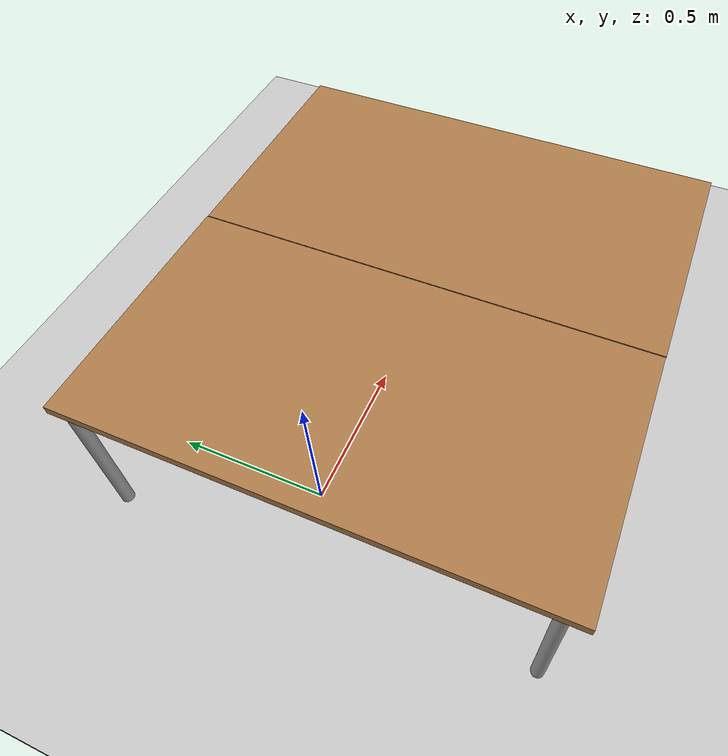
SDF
<sdf version="1.6">
 <world name="default">
  <light name="sun" type="directional">
   <pose>0 0 10 0 -0 0</pose>
   <diffuse>0.8 0.8 0.8 1</diffuse>
   <specular>0.2 0.2 0.2 1</specular>
   <attenuation>
    <range>1000</range>
    <constant>0.9</constant>
    <linear>0.01</linear>
    <quadratic>0.001</quadratic>
   </attenuation>
   <direction>-0.5 0.1 -0.9</direction>
  </light>
  <model name="ground_plane">
   <static>1</static>
   <link name="link">
    <collision name="collision">
     <geometry><plane><normal>0 0 1</normal><size>100 100</size></plane></geometry>
     <surface><friction><ode><mu>100</mu><mu2>50</mu2></ode></friction></surface>
    </collision>
    <visual name="visual">
     <cast_shadows>0</cast_shadows>
     <geometry><plane><normal>0 0 1</normal><size>100 100</size></plane></geometry>
     <material>
      <script><uri>file://media/materials/scripts/gazebo.material</uri><name>Gazebo/Grey</name></script>
     </material>
    </visual>
   </link>
  </model>
  <gravity>0 0 -9.8</gravity>
  <magnetic_field>6e-06 2.3e-05 -4.2e-05</magnetic_field>
  <atmosphere type="adiabatic"/>
  <physics name="default_physics" default="0" type="ode">
   <max_step_size>0.001</max_step_size>
   <real_time_factor>1</real_time_factor>
   <real_time_update_rate>1000</real_time_update_rate>
  </physics>
  <scene><ambient>0.4 0.4 0.4 1</ambient><background>0.7 0.7 0.7 1</background><shadows>1</shadows></scene>
  <audio><device>default</device></audio>
  <spherical_coordinates>
   <surface_model>EARTH_WGS84</surface_model>
   <latitude_deg>0</latitude_deg>
   <longitude_deg>0</longitude_deg>
   <elevation>0</elevation>
   <heading_deg>0</heading_deg>
  </spherical_coordinates>
  <model name="table">
   <static>1</static>
   <link name="link">
    <collision name="surface">
     <pose>0 0 0.5 0 -0 0</pose>
     <geometry><box><size>1.5 0.8 0.03</size></box></geometry>
     <surface><friction><ode><mu>0.6</mu><mu2>0.6</mu2></ode></friction></surface>
    </collision>
    <visual name="visual1">
     <pose>0 0 0.5 0 -0 0</pose>
     <geometry><box><size>1.5 0.8 0.03</size></box></geometry>
     <material>
      <script><uri>file://media/materials/scripts/gazebo.material</uri><name>Gazebo/Wood</name></script>
     </material>
    </visual>
    <collision name="front_left_leg">
     <pose>0.68 0.38 0.25 0 -0 0</pose>
     <geometry><cylinder><radius>0.02</radius><length>0.5</length></cylinder></geometry>
    </collision>
    <visual name="front_left_leg">
     <pose>0.68 0.38 0.25 0 -0 0</pose>
     <geometry><cylinder><radius>0.02</radius><length>0.5</length></cylinder></geometry>
     <material>
      <script><uri>file://media/materials/scripts/gazebo.material</uri><name>Gazebo/Grey</name></script>
     </material>
    </visual>
    <collision name="front_right_leg">
     <pose>0.68 -0.38 0.25 0 -0 0</pose>
     <geometry><cylinder><radius>0.02</radius><length>0.5</length></cylinder></geometry>
    </collision>
    <visual name="front_right_leg">
     <pose>0.68 -0.38 0.25 0 -0 0</pose>
     <geometry><cylinder><radius>0.02</radius><length>0.5</length></cylinder></geometry>
     <material>
      <script><uri>file://media/materials/scripts/gazebo.material</uri><name>Gazebo/Grey</name></script>
     </material>
    </visual>
    <collision name="back_right_leg">
     <pose>-0.68 -0.38 0.25 0 -0 0</pose>
     <geometry><cylinder><radius>0.02</radius><length>0.5</length></cylinder></geometry>
    </collision>
    <visual name="back_right_leg">
     <pose>-0.68 -0.38 0.25 0 -0 0</pose>
     <geometry><cylinder><radius>0.02</radius><length>0.5</length></cylinder></geometry>
     <material>
      <script><uri>file://media/materials/scripts/gazebo.material</uri><name>Gazebo/Grey</name></script>
     </material>
    </visual>
    <collision name="back_left_leg">
     <pose>-0.68 0.38 0.25 0 -0 0</pose>
     <geometry><cylinder><radius>0.02</radius><length>0.5</length></cylinder></geometry>
    </collision>
    <visual name="back_left_leg">
     <pose>-0.68 0.38 0.25 0 -0 0</pose>
     <geometry><cylinder><radius>0.02</radius><length>0.5</length></cylinder></geometry>
     <material>
      <script><uri>file://media/materials/scripts/gazebo.material</uri><name>Gazebo/Grey</name></script>
     </material>
    </visual>
   </link>
   <pose>0.141486 -0.111698 0 0 -0 1.57274</pose>
  </model>
  <model name="asphalt_plane">
   <static>1</static>
   <link name="link">
    <collision name="collision"><geometry><box><size>20 20 0.1</size></box></geometry></collision>
    <visual name="visual">
     <cast_shadows>0</cast_shadows>
     <geometry><box><size>20 20 0.1</size></box></geometry>
     <material>
      <script>
       <uri>model://asphalt_plane/materials/scripts</uri>
       <uri>model://asphalt_plane/materials/textures</uri>
       <name>vrc/asphalt</name>
      </script>
     </material>
    </visual>
   </link>
   <pose>-86.5622 -4.74054 0 0 -0 0</pose>
  </model>
  <model name="table_clone">
   <static>1</static>
   <link name="link">
    <collision name="surface">
     <pose>0 0 0.5 0 -0 0</pose>
     <geometry><box><size>1.5 0.8 0.03</size></box></geometry>
     <surface><friction><ode><mu>0.6</mu><mu2>0.6</mu2></ode></friction></surface>
    </collision>
    <visual name="visual1">
     <pose>0 0 0.5 0 -0 0</pose>
     <geometry><box><size>1.5 0.8 0.03</size></box></geometry>
     <material>
      <script><uri>file://media/materials/scripts/gazebo.material</uri><name>Gazebo/Wood</name></script>
     </material>
    </visual>
    <collision name="front_left_leg">
     <pose>0.68 0.38 0.25 0 -0 0</pose>
     <geometry><cylinder><radius>0.02</radius><length>0.5</length></cylinder></geometry>
    </collision>
    <visual name="front_left_leg">
     <pose>0.68 0.38 0.25 0 -0 0</pose>
     <geometry><cylinder><radius>0.02</radius><length>0.5</length></cylinder></geometry>
     <material>
      <script><uri>file://media/materials/scripts/gazebo.material</uri><name>Gazebo/Grey</name></script>
     </material>
    </visual>
    <collision name="front_right_leg">
     <pose>0.68 -0.38 0.25 0 -0 0</pose>
     <geometry><cylinder><radius>0.02</radius><length>0.5</length></cylinder></geometry>
    </collision>
    <visual name="front_right_leg">
     <pose>0.68 -0.38 0.25 0 -0 0</pose>
     <geometry><cylinder><radius>0.02</radius><length>0.5</length></cylinder></geometry>
     <material>
      <script><uri>file://media/materials/scripts/gazebo.material</uri><name>Gazebo/Grey</name></script>
     </material>
    </visual>
    <collision name="back_right_leg">
     <pose>-0.68 -0.38 0.25 0 -0 0</pose>
     <geometry><cylinder><radius>0.02</radius><length>0.5</length></cylinder></geometry>
    </collision>
    <visual name="back_right_leg">
     <pose>-0.68 -0.38 0.25 0 -0 0</pose>
     <geometry><cylinder><radius>0.02</radius><length>0.5</length></cylinder></geometry>
     <material>
      <script><uri>file://media/materials/scripts/gazebo.material</uri><name>Gazebo/Grey</name></script>
     </material>
    </visual>
    <collision name="back_left_leg">
     <pose>-0.68 0.38 0.25 0 -0 0</pose>
     <geometry><cylinder><radius>0.02</radius><length>0.5</length></cylinder></geometry>
    </collision>
    <visual name="back_left_leg">
     <pose>-0.68 0.38 0.25 0 -0 0</pose>
     <geometry><cylinder><radius>0.02</radius><length>0.5</length></cylinder></geometry>
     <material>
      <script><uri>file://media/materials/scripts/gazebo.material</uri><name>Gazebo/Grey</name></script>
     </material>
    </visual>
   </link>
   <pose>0.9444 -0.111698 0 0 -0 1.57274</pose>
  </model>
  <plugin name="GazeboPlugin" filename="lib/libGazeboCoSimPlugin.so"><portNumber>14581</portNumber></plugin>
 </world>
</sdf>
